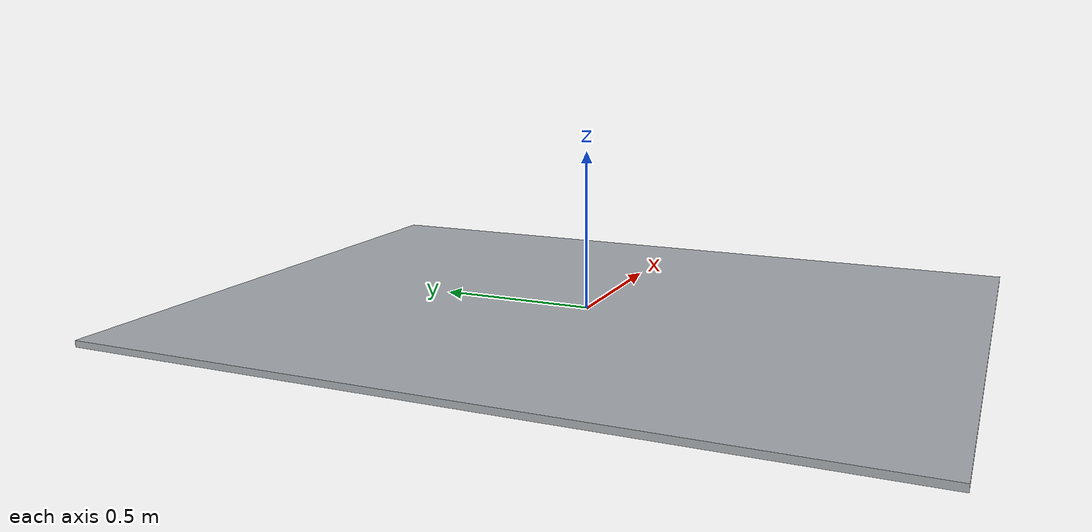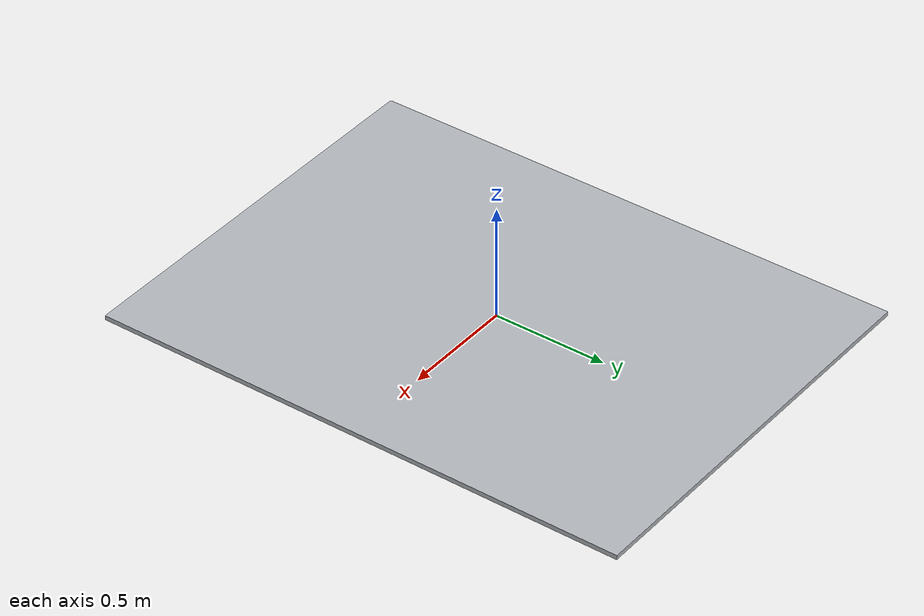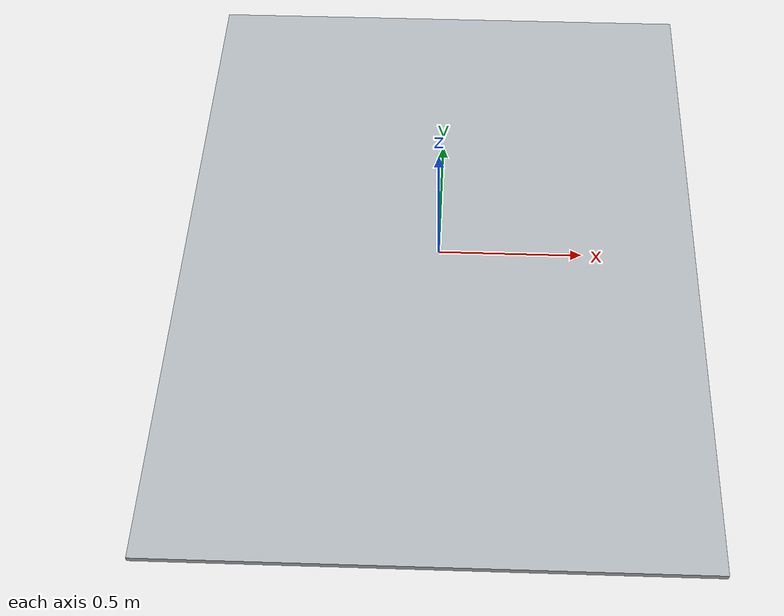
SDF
<?xml version='1.0' encoding='utf-8'?>
<sdf version="1.6">
  <model name="aws_robomaker_residential_Carpet_01">
    <static>true</static>
    <link name="link">
      <collision name="collision_1">
        <geometry>
          <box>
            <size>1.8 2.4 0.02</size>
          </box>
        </geometry>
      </collision>
      <visual name="visual_1">
        <geometry>
          <box>
            <size>1.8 2.4 0.02</size>
          </box>
        </geometry>
        <material>
          <ambient>0.7 0.72 0.74 1</ambient>
          <diffuse>0.7 0.72 0.74 1</diffuse>
          <specular>0.08 0.08 0.08 1</specular>
        </material>
      </visual>
    </link>
  </model>
</sdf>
